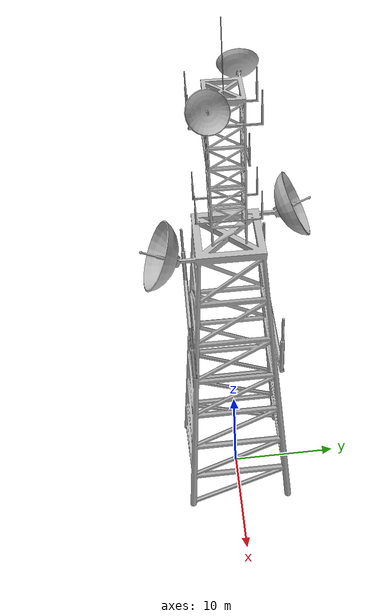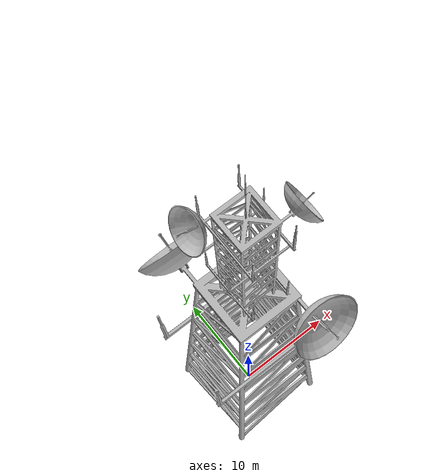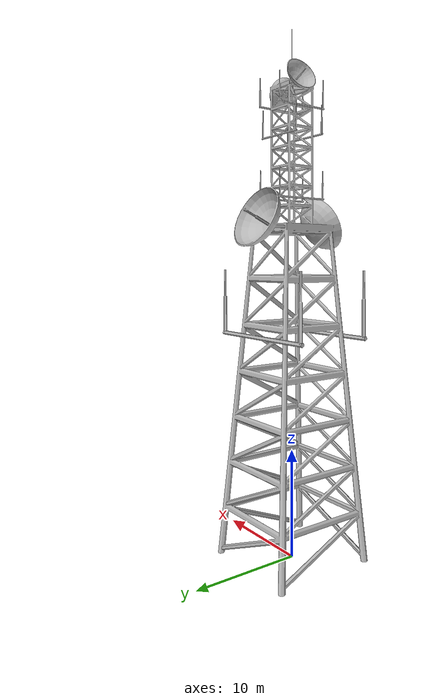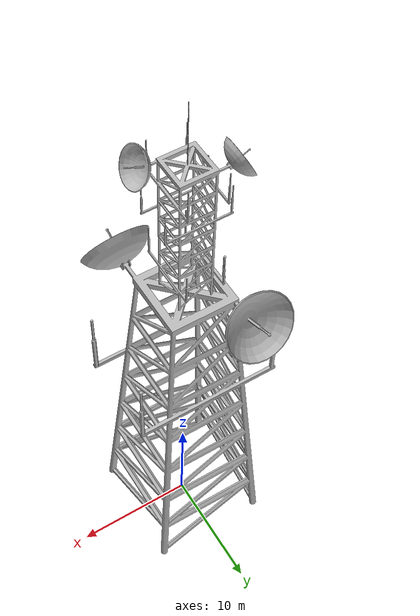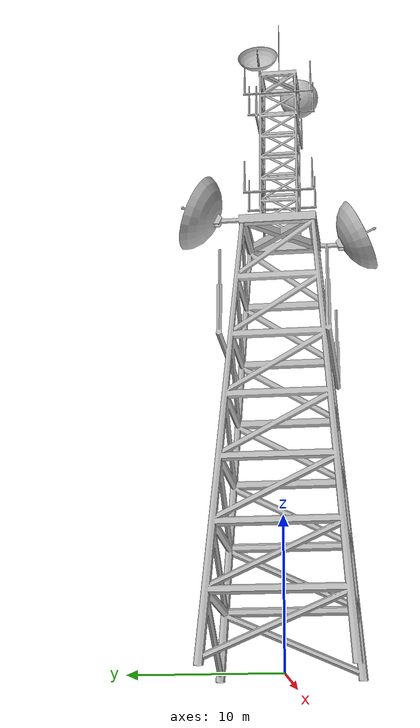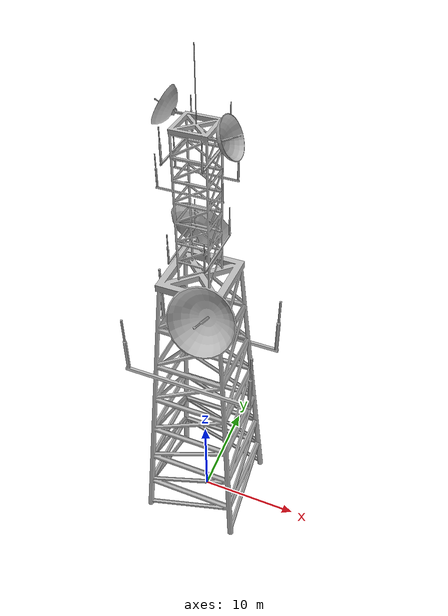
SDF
<?xml version="1.0" ?>
<sdf version="1.6">
  <model name="radio_tower">
    <static>true</static>
    <link name="link">
      <collision name="collision">
        <geometry>
          <mesh>
            <uri>model://radio_tower/meshes/radio_tower.dae</uri>
          </mesh>
        </geometry>
      </collision>
      <visual name="visual">
        <geometry>
          <mesh>
            <uri>model://radio_tower/meshes/radio_tower.dae</uri>
          </mesh>
        </geometry>
      </visual>
    </link>
   <joint name="WT_joint" type="revolute">
      <pose relative_to='link'>0.01 0.01 45 0 0 -0 0 </pose>
      <child>WT</child>
      <parent>link</parent>
      <axis>
        <xyz>0 0 1</xyz>
        <limit>
          <lower>0</lower>
          <upper>0</upper>
        </limit>
     </axis>
    </joint>
    <link name="WT">
    <pose relative_to='WT_joint'>0 0 0 0 -0 0</pose>
    <inertial>
     <mass>0.01</mass>
        <inertia>
          <ixx>0.963796e-6</ixx>
          <ixy>0</ixy>
          <ixz>0</ixz>
          <iyy>0.963796e-6</iyy>
          <iyz>0</iyz>
          <izz>2e-8</izz>
        </inertia>
     </inertial>
    <visual name="antenna">
     <pose>0 0 .04 0 0 0</pose>
     <geometry>
       <cylinder>
         <radius>0.03</radius>
         <length>5</length>
       </cylinder>
     </geometry>
    <collision name="base_collision">
      <geometry>
        <cylinder>
          <radius>.03</radius>
          <length>5</length>
        </cylinder>
      </geometry>
     </collision>
    </visual>
   <sensor name="Wireless Transmitter" type="wireless_transmitter">
     <always_on>1</always_on>
     <update_rate>20</update_rate>
     <visualize>true</visualize>
     <transceiver>
       <essid>Tower</essid>
       <frequency>1500.0</frequency>
       <power>150</power>
       <gain>50</gain>
     </transceiver>
   </sensor>
   </link>
   </model>
</sdf>
